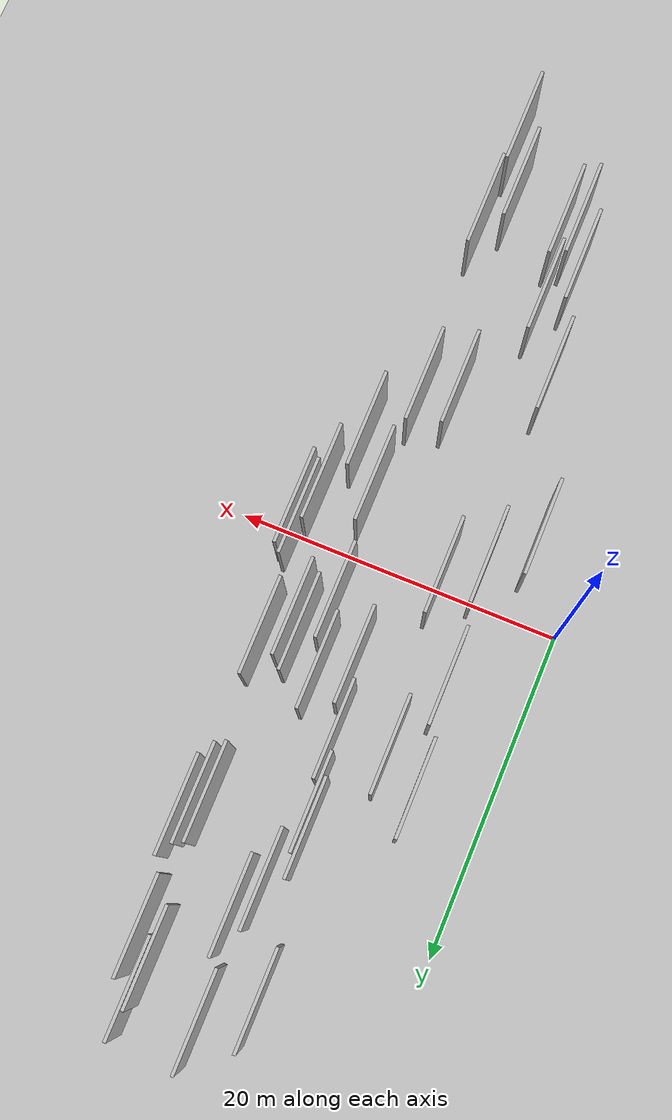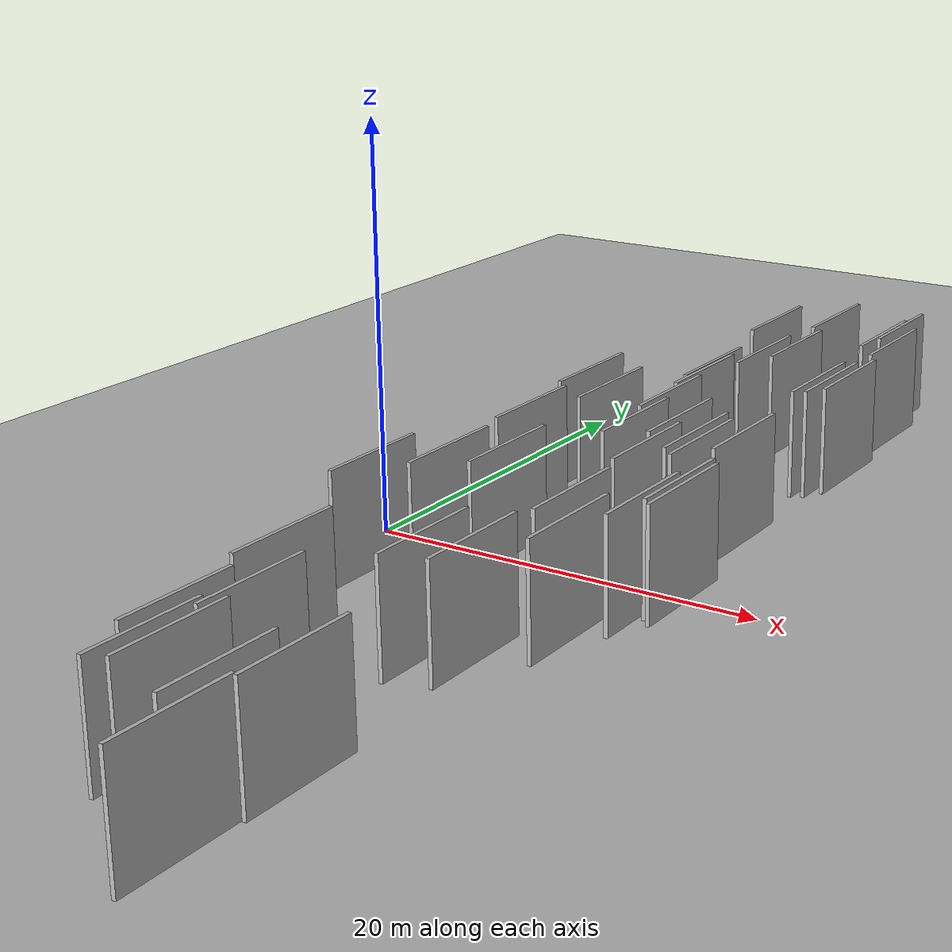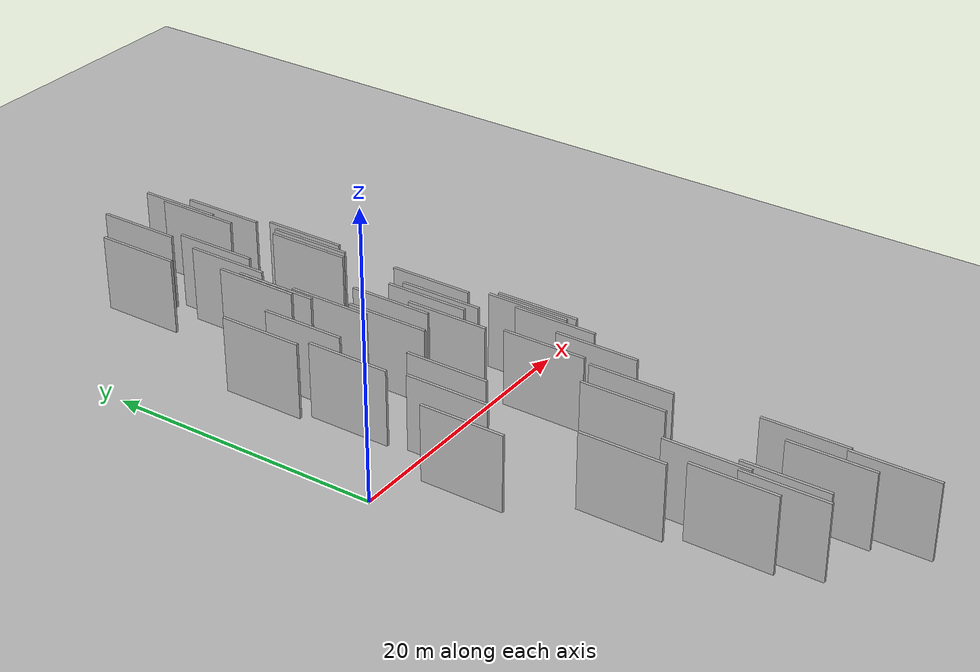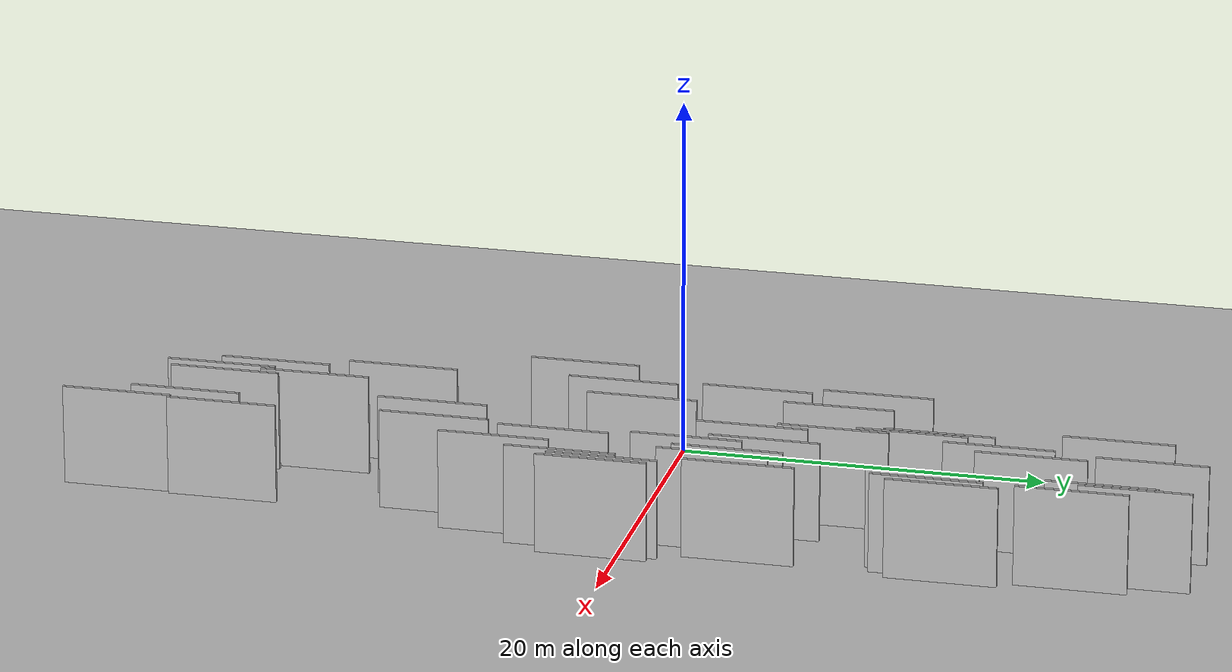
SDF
<?xml version="1.0" encoding="utf-8"?>

<sdf version="1.6">

   <world name="default">

      <gui fullscreen="0">

         <camera name="user_camera">

            <pose>-15 0 4.57585 0 0 0</pose>

            <view_controller>orbit</view_controller>

         </camera>

      </gui>

      <scene>

         <sky>

           <clouds>

             <speed>12</speed>

           </clouds>

         </sky>

         <ambient>0.4 0.4 0.4 1</ambient>

         <background>0.7 0.7 0.7 1</background>

         <shadows>1</shadows>

      </scene>

      <gravity>0 0 -9.8066</gravity>

      <magnetic_field>6e-06 2.3e-05 -4.2e-05</magnetic_field>

      <physics default="0" name="default_physics" type="ode">

         <ode>

            <solver>

               <type>quick</type>

               <iters>10</iters>

               <sor>1.0</sor>

               <use_dynamic_moi_rescaling>0</use_dynamic_moi_rescaling>

            </solver>

            <constraints>

               <cfm>0</cfm>

               <erp>0.2</erp>

               <contact_max_correcting_vel>100</contact_max_correcting_vel>

               <contact_surface_layer>0.001</contact_surface_layer>

            </constraints>

         </ode>

         <max_step_size>0.004</max_step_size>

         <real_time_factor>1</real_time_factor>

         <real_time_update_rate>250</real_time_update_rate>

      </physics>

      <light name="sun" type="directional">

         <cast_shadows>1</cast_shadows>

         <pose>0 0 10 0 0 0</pose>

         <diffuse>0.8 0.8 0.8 1</diffuse>

         <specular>0.2 0.2 0.2 1</specular>

         <attenuation>

            <range>1000</range>

            <constant>0.9</constant>

            <linear>0.01</linear>

            <quadratic>0.001</quadratic>

         </attenuation>

         <direction>-0.5 0.1 -0.9</direction>

      </light>

      <include>

         <name>ground_plane_1</name>

         <uri>model://HANNAS_ground_plane</uri>

         <pose>0 0 0  0 0 0</pose>

      </include>

      <include>

         <name>ground_plane_2</name>

         <uri>model://HANNAS_ground_plane</uri>

         <pose>100 0 0  0 0 0</pose>

      </include>

      <model name="HANNAS_wall_1">

         <static>1</static>

         <pose frame="">10.3094 19.3402 0.0 0.000000 0.000000 1.570796</pose>

         <link name="link">

            <pose frame="">0 0 3.00 0 0 0</pose>

            <collision name="collision">

               <geometry>

                  <box>

                     <size>6.00 0.2 6.00</size>

                  </box>

               </geometry>

               <max_contacts>10</max_contacts>

               <surface>

                  <contact>

                     <ode/>

                  </contact>

                  <bounce/>

                  <friction>

                     <torsional>

                        <ode/>

                     </torsional>

                     <ode/>

                  </friction>

               </surface>

            </collision>

            <visual name="visual">

               <cast_shadows>0</cast_shadows>

               <geometry>

                  <box>

                     <size>6.00 0.2 6.00</size>

                  </box>

               </geometry>

               <material>

                  <script>

                     <uri>model://HANNAS_wall/materials/scripts</uri>

                     <uri>model://HANNAS_wall/materials/textures</uri>

                     <name>vrc/HANNAS_wall</name>

                  </script>

               </material>

            </visual>

            <self_collide>0</self_collide>

            <enable_wind>0</enable_wind>

            <kinematic>0</kinematic>

         </link>

      </model>

      <model name="HANNAS_wall_2">

         <static>1</static>

         <pose frame="">15.5724 24.1488 0.0 0.000000 0.000000 1.570796</pose>

         <link name="link">

            <pose frame="">0 0 3.00 0 0 0</pose>

            <collision name="collision">

               <geometry>

                  <box>

                     <size>6.00 0.2 6.00</size>

                  </box>

               </geometry>

               <max_contacts>10</max_contacts>

               <surface>

                  <contact>

                     <ode/>

                  </contact>

                  <bounce/>

                  <friction>

                     <torsional>

                        <ode/>

                     </torsional>

                     <ode/>

                  </friction>

               </surface>

            </collision>

            <visual name="visual">

               <cast_shadows>0</cast_shadows>

               <geometry>

                  <box>

                     <size>6.00 0.2 6.00</size>

                  </box>

               </geometry>

               <material>

                  <script>

                     <uri>model://HANNAS_wall/materials/scripts</uri>

                     <uri>model://HANNAS_wall/materials/textures</uri>

                     <name>vrc/HANNAS_wall</name>

                  </script>

               </material>

            </visual>

            <self_collide>0</self_collide>

            <enable_wind>0</enable_wind>

            <kinematic>0</kinematic>

         </link>

      </model>

      <model name="HANNAS_wall_3">

         <static>1</static>

         <pose frame="">9.4070 14.5130 0.0 0.000000 0.000000 1.570796</pose>

         <link name="link">

            <pose frame="">0 0 3.00 0 0 0</pose>

            <collision name="collision">

               <geometry>

                  <box>

                     <size>6.00 0.2 6.00</size>

                  </box>

               </geometry>

               <max_contacts>10</max_contacts>

               <surface>

                  <contact>

                     <ode/>

                  </contact>

                  <bounce/>

                  <friction>

                     <torsional>

                        <ode/>

                     </torsional>

                     <ode/>

                  </friction>

               </surface>

            </collision>

            <visual name="visual">

               <cast_shadows>0</cast_shadows>

               <geometry>

                  <box>

                     <size>6.00 0.2 6.00</size>

                  </box>

               </geometry>

               <material>

                  <script>

                     <uri>model://HANNAS_wall/materials/scripts</uri>

                     <uri>model://HANNAS_wall/materials/textures</uri>

                     <name>vrc/HANNAS_wall</name>

                  </script>

               </material>

            </visual>

            <self_collide>0</self_collide>

            <enable_wind>0</enable_wind>

            <kinematic>0</kinematic>

         </link>

      </model>

      <model name="HANNAS_wall_4">

         <static>1</static>

         <pose frame="">16.1431 17.3992 0.0 0.000000 0.000000 1.570796</pose>

         <link name="link">

            <pose frame="">0 0 3.00 0 0 0</pose>

            <collision name="collision">

               <geometry>

                  <box>

                     <size>6.00 0.2 6.00</size>

                  </box>

               </geometry>

               <max_contacts>10</max_contacts>

               <surface>

                  <contact>

                     <ode/>

                  </contact>

                  <bounce/>

                  <friction>

                     <torsional>

                        <ode/>

                     </torsional>

                     <ode/>

                  </friction>

               </surface>

            </collision>

            <visual name="visual">

               <cast_shadows>0</cast_shadows>

               <geometry>

                  <box>

                     <size>6.00 0.2 6.00</size>

                  </box>

               </geometry>

               <material>

                  <script>

                     <uri>model://HANNAS_wall/materials/scripts</uri>

                     <uri>model://HANNAS_wall/materials/textures</uri>

                     <name>vrc/HANNAS_wall</name>

                  </script>

               </material>

            </visual>

            <self_collide>0</self_collide>

            <enable_wind>0</enable_wind>

            <kinematic>0</kinematic>

         </link>

      </model>

      <model name="HANNAS_wall_5">

         <static>1</static>

         <pose frame="">16.0255 -2.9704 0.0 0.000000 0.000000 1.570796</pose>

         <link name="link">

            <pose frame="">0 0 3.00 0 0 0</pose>

            <collision name="collision">

               <geometry>

                  <box>

                     <size>6.00 0.2 6.00</size>

                  </box>

               </geometry>

               <max_contacts>10</max_contacts>

               <surface>

                  <contact>

                     <ode/>

                  </contact>

                  <bounce/>

                  <friction>

                     <torsional>

                        <ode/>

                     </torsional>

                     <ode/>

                  </friction>

               </surface>

            </collision>

            <visual name="visual">

               <cast_shadows>0</cast_shadows>

               <geometry>

                  <box>

                     <size>6.00 0.2 6.00</size>

                  </box>

               </geometry>

               <material>

                  <script>

                     <uri>model://HANNAS_wall/materials/scripts</uri>

                     <uri>model://HANNAS_wall/materials/textures</uri>

                     <name>vrc/HANNAS_wall</name>

                  </script>

               </material>

            </visual>

            <self_collide>0</self_collide>

            <enable_wind>0</enable_wind>

            <kinematic>0</kinematic>

         </link>

      </model>

      <model name="HANNAS_wall_6">

         <static>1</static>

         <pose frame="">14.6744 27.3157 0.0 0.000000 0.000000 1.570796</pose>

         <link name="link">

            <pose frame="">0 0 3.00 0 0 0</pose>

            <collision name="collision">

               <geometry>

                  <box>

                     <size>6.00 0.2 6.00</size>

                  </box>

               </geometry>

               <max_contacts>10</max_contacts>

               <surface>

                  <contact>

                     <ode/>

                  </contact>

                  <bounce/>

                  <friction>

                     <torsional>

                        <ode/>

                     </torsional>

                     <ode/>

                  </friction>

               </surface>

            </collision>

            <visual name="visual">

               <cast_shadows>0</cast_shadows>

               <geometry>

                  <box>

                     <size>6.00 0.2 6.00</size>

                  </box>

               </geometry>

               <material>

                  <script>

                     <uri>model://HANNAS_wall/materials/scripts</uri>

                     <uri>model://HANNAS_wall/materials/textures</uri>

                     <name>vrc/HANNAS_wall</name>

                  </script>

               </material>

            </visual>

            <self_collide>0</self_collide>

            <enable_wind>0</enable_wind>

            <kinematic>0</kinematic>

         </link>

      </model>

      <model name="HANNAS_wall_7">

         <static>1</static>

         <pose frame="">8.1750 -18.4370 0.0 0.000000 0.000000 1.570796</pose>

         <link name="link">

            <pose frame="">0 0 3.00 0 0 0</pose>

            <collision name="collision">

               <geometry>

                  <box>

                     <size>6.00 0.2 6.00</size>

                  </box>

               </geometry>

               <max_contacts>10</max_contacts>

               <surface>

                  <contact>

                     <ode/>

                  </contact>

                  <bounce/>

                  <friction>

                     <torsional>

                        <ode/>

                     </torsional>

                     <ode/>

                  </friction>

               </surface>

            </collision>

            <visual name="visual">

               <cast_shadows>0</cast_shadows>

               <geometry>

                  <box>

                     <size>6.00 0.2 6.00</size>

                  </box>

               </geometry>

               <material>

                  <script>

                     <uri>model://HANNAS_wall/materials/scripts</uri>

                     <uri>model://HANNAS_wall/materials/textures</uri>

                     <name>vrc/HANNAS_wall</name>

                  </script>

               </material>

            </visual>

            <self_collide>0</self_collide>

            <enable_wind>0</enable_wind>

            <kinematic>0</kinematic>

         </link>

      </model>

      <model name="HANNAS_wall_8">

         <static>1</static>

         <pose frame="">14.5243 4.8752 0.0 0.000000 0.000000 1.570796</pose>

         <link name="link">

            <pose frame="">0 0 3.00 0 0 0</pose>

            <collision name="collision">

               <geometry>

                  <box>

                     <size>6.00 0.2 6.00</size>

                  </box>

               </geometry>

               <max_contacts>10</max_contacts>

               <surface>

                  <contact>

                     <ode/>

                  </contact>

                  <bounce/>

                  <friction>

                     <torsional>

                        <ode/>

                     </torsional>

                     <ode/>

                  </friction>

               </surface>

            </collision>

            <visual name="visual">

               <cast_shadows>0</cast_shadows>

               <geometry>

                  <box>

                     <size>6.00 0.2 6.00</size>

                  </box>

               </geometry>

               <material>

                  <script>

                     <uri>model://HANNAS_wall/materials/scripts</uri>

                     <uri>model://HANNAS_wall/materials/textures</uri>

                     <name>vrc/HANNAS_wall</name>

                  </script>

               </material>

            </visual>

            <self_collide>0</self_collide>

            <enable_wind>0</enable_wind>

            <kinematic>0</kinematic>

         </link>

      </model>

      <model name="HANNAS_wall_9">

         <static>1</static>

         <pose frame="">16.4626 -0.6088 0.0 0.000000 0.000000 1.570796</pose>

         <link name="link">

            <pose frame="">0 0 3.00 0 0 0</pose>

            <collision name="collision">

               <geometry>

                  <box>

                     <size>6.00 0.2 6.00</size>

                  </box>

               </geometry>

               <max_contacts>10</max_contacts>

               <surface>

                  <contact>

                     <ode/>

                  </contact>

                  <bounce/>

                  <friction>

                     <torsional>

                        <ode/>

                     </torsional>

                     <ode/>

                  </friction>

               </surface>

            </collision>

            <visual name="visual">

               <cast_shadows>0</cast_shadows>

               <geometry>

                  <box>

                     <size>6.00 0.2 6.00</size>

                  </box>

               </geometry>

               <material>

                  <script>

                     <uri>model://HANNAS_wall/materials/scripts</uri>

                     <uri>model://HANNAS_wall/materials/textures</uri>

                     <name>vrc/HANNAS_wall</name>

                  </script>

               </material>

            </visual>

            <self_collide>0</self_collide>

            <enable_wind>0</enable_wind>

            <kinematic>0</kinematic>

         </link>

      </model>

      <model name="HANNAS_wall_10">

         <static>1</static>

         <pose frame="">6.5493 9.9806 0.0 0.000000 0.000000 1.570796</pose>

         <link name="link">

            <pose frame="">0 0 3.00 0 0 0</pose>

            <collision name="collision">

               <geometry>

                  <box>

                     <size>6.00 0.2 6.00</size>

                  </box>

               </geometry>

               <max_contacts>10</max_contacts>

               <surface>

                  <contact>

                     <ode/>

                  </contact>

                  <bounce/>

                  <friction>

                     <torsional>

                        <ode/>

                     </torsional>

                     <ode/>

                  </friction>

               </surface>

            </collision>

            <visual name="visual">

               <cast_shadows>0</cast_shadows>

               <geometry>

                  <box>

                     <size>6.00 0.2 6.00</size>

                  </box>

               </geometry>

               <material>

                  <script>

                     <uri>model://HANNAS_wall/materials/scripts</uri>

                     <uri>model://HANNAS_wall/materials/textures</uri>

                     <name>vrc/HANNAS_wall</name>

                  </script>

               </material>

            </visual>

            <self_collide>0</self_collide>

            <enable_wind>0</enable_wind>

            <kinematic>0</kinematic>

         </link>

      </model>

      <model name="HANNAS_wall_11">

         <static>1</static>

         <pose frame="">15.8029 6.5562 0.0 0.000000 0.000000 1.570796</pose>

         <link name="link">

            <pose frame="">0 0 3.00 0 0 0</pose>

            <collision name="collision">

               <geometry>

                  <box>

                     <size>6.00 0.2 6.00</size>

                  </box>

               </geometry>

               <max_contacts>10</max_contacts>

               <surface>

                  <contact>

                     <ode/>

                  </contact>

                  <bounce/>

                  <friction>

                     <torsional>

                        <ode/>

                     </torsional>

                     <ode/>

                  </friction>

               </surface>

            </collision>

            <visual name="visual">

               <cast_shadows>0</cast_shadows>

               <geometry>

                  <box>

                     <size>6.00 0.2 6.00</size>

                  </box>

               </geometry>

               <material>

                  <script>

                     <uri>model://HANNAS_wall/materials/scripts</uri>

                     <uri>model://HANNAS_wall/materials/textures</uri>

                     <name>vrc/HANNAS_wall</name>

                  </script>

               </material>

            </visual>

            <self_collide>0</self_collide>

            <enable_wind>0</enable_wind>

            <kinematic>0</kinematic>

         </link>

      </model>

      <model name="HANNAS_wall_12">

         <static>1</static>

         <pose frame="">7.5150 -0.5313 0.0 0.000000 0.000000 1.570796</pose>

         <link name="link">

            <pose frame="">0 0 3.00 0 0 0</pose>

            <collision name="collision">

               <geometry>

                  <box>

                     <size>6.00 0.2 6.00</size>

                  </box>

               </geometry>

               <max_contacts>10</max_contacts>

               <surface>

                  <contact>

                     <ode/>

                  </contact>

                  <bounce/>

                  <friction>

                     <torsional>

                        <ode/>

                     </torsional>

                     <ode/>

                  </friction>

               </surface>

            </collision>

            <visual name="visual">

               <cast_shadows>0</cast_shadows>

               <geometry>

                  <box>

                     <size>6.00 0.2 6.00</size>

                  </box>

               </geometry>

               <material>

                  <script>

                     <uri>model://HANNAS_wall/materials/scripts</uri>

                     <uri>model://HANNAS_wall/materials/textures</uri>

                     <name>vrc/HANNAS_wall</name>

                  </script>

               </material>

            </visual>

            <self_collide>0</self_collide>

            <enable_wind>0</enable_wind>

            <kinematic>0</kinematic>

         </link>

      </model>

      <model name="HANNAS_wall_13">

         <static>1</static>

         <pose frame="">8.7044 -23.2994 0.0 0.000000 0.000000 1.570796</pose>

         <link name="link">

            <pose frame="">0 0 3.00 0 0 0</pose>

            <collision name="collision">

               <geometry>

                  <box>

                     <size>6.00 0.2 6.00</size>

                  </box>

               </geometry>

               <max_contacts>10</max_contacts>

               <surface>

                  <contact>

                     <ode/>

                  </contact>

                  <bounce/>

                  <friction>

                     <torsional>

                        <ode/>

                     </torsional>

                     <ode/>

                  </friction>

               </surface>

            </collision>

            <visual name="visual">

               <cast_shadows>0</cast_shadows>

               <geometry>

                  <box>

                     <size>6.00 0.2 6.00</size>

                  </box>

               </geometry>

               <material>

                  <script>

                     <uri>model://HANNAS_wall/materials/scripts</uri>

                     <uri>model://HANNAS_wall/materials/textures</uri>

                     <name>vrc/HANNAS_wall</name>

                  </script>

               </material>

            </visual>

            <self_collide>0</self_collide>

            <enable_wind>0</enable_wind>

            <kinematic>0</kinematic>

         </link>

      </model>

      <model name="HANNAS_wall_14">

         <static>1</static>

         <pose frame="">11.2874 21.2249 0.0 0.000000 0.000000 1.570796</pose>

         <link name="link">

            <pose frame="">0 0 3.00 0 0 0</pose>

            <collision name="collision">

               <geometry>

                  <box>

                     <size>6.00 0.2 6.00</size>

                  </box>

               </geometry>

               <max_contacts>10</max_contacts>

               <surface>

                  <contact>

                     <ode/>

                  </contact>

                  <bounce/>

                  <friction>

                     <torsional>

                        <ode/>

                     </torsional>

                     <ode/>

                  </friction>

               </surface>

            </collision>

            <visual name="visual">

               <cast_shadows>0</cast_shadows>

               <geometry>

                  <box>

                     <size>6.00 0.2 6.00</size>

                  </box>

               </geometry>

               <material>

                  <script>

                     <uri>model://HANNAS_wall/materials/scripts</uri>

                     <uri>model://HANNAS_wall/materials/textures</uri>

                     <name>vrc/HANNAS_wall</name>

                  </script>

               </material>

            </visual>

            <self_collide>0</self_collide>

            <enable_wind>0</enable_wind>

            <kinematic>0</kinematic>

         </link>

      </model>

      <model name="HANNAS_wall_15">

         <static>1</static>

         <pose frame="">10.7463 -11.2296 0.0 0.000000 0.000000 1.570796</pose>

         <link name="link">

            <pose frame="">0 0 3.00 0 0 0</pose>

            <collision name="collision">

               <geometry>

                  <box>

                     <size>6.00 0.2 6.00</size>

                  </box>

               </geometry>

               <max_contacts>10</max_contacts>

               <surface>

                  <contact>

                     <ode/>

                  </contact>

                  <bounce/>

                  <friction>

                     <torsional>

                        <ode/>

                     </torsional>

                     <ode/>

                  </friction>

               </surface>

            </collision>

            <visual name="visual">

               <cast_shadows>0</cast_shadows>

               <geometry>

                  <box>

                     <size>6.00 0.2 6.00</size>

                  </box>

               </geometry>

               <material>

                  <script>

                     <uri>model://HANNAS_wall/materials/scripts</uri>

                     <uri>model://HANNAS_wall/materials/textures</uri>

                     <name>vrc/HANNAS_wall</name>

                  </script>

               </material>

            </visual>

            <self_collide>0</self_collide>

            <enable_wind>0</enable_wind>

            <kinematic>0</kinematic>

         </link>

      </model>

      <model name="HANNAS_wall_16">

         <static>1</static>

         <pose frame="">15.5581 16.4812 0.0 0.000000 0.000000 1.570796</pose>

         <link name="link">

            <pose frame="">0 0 3.00 0 0 0</pose>

            <collision name="collision">

               <geometry>

                  <box>

                     <size>6.00 0.2 6.00</size>

                  </box>

               </geometry>

               <max_contacts>10</max_contacts>

               <surface>

                  <contact>

                     <ode/>

                  </contact>

                  <bounce/>

                  <friction>

                     <torsional>

                        <ode/>

                     </torsional>

                     <ode/>

                  </friction>

               </surface>

            </collision>

            <visual name="visual">

               <cast_shadows>0</cast_shadows>

               <geometry>

                  <box>

                     <size>6.00 0.2 6.00</size>

                  </box>

               </geometry>

               <material>

                  <script>

                     <uri>model://HANNAS_wall/materials/scripts</uri>

                     <uri>model://HANNAS_wall/materials/textures</uri>

                     <name>vrc/HANNAS_wall</name>

                  </script>

               </material>

            </visual>

            <self_collide>0</self_collide>

            <enable_wind>0</enable_wind>

            <kinematic>0</kinematic>

         </link>

      </model>

      <model name="HANNAS_wall_17">

         <static>1</static>

         <pose frame="">13.8614 5.5422 0.0 0.000000 0.000000 1.570796</pose>

         <link name="link">

            <pose frame="">0 0 3.00 0 0 0</pose>

            <collision name="collision">

               <geometry>

                  <box>

                     <size>6.00 0.2 6.00</size>

                  </box>

               </geometry>

               <max_contacts>10</max_contacts>

               <surface>

                  <contact>

                     <ode/>

                  </contact>

                  <bounce/>

                  <friction>

                     <torsional>

                        <ode/>

                     </torsional>

                     <ode/>

                  </friction>

               </surface>

            </collision>

            <visual name="visual">

               <cast_shadows>0</cast_shadows>

               <geometry>

                  <box>

                     <size>6.00 0.2 6.00</size>

                  </box>

               </geometry>

               <material>

                  <script>

                     <uri>model://HANNAS_wall/materials/scripts</uri>

                     <uri>model://HANNAS_wall/materials/textures</uri>

                     <name>vrc/HANNAS_wall</name>

                  </script>

               </material>

            </visual>

            <self_collide>0</self_collide>

            <enable_wind>0</enable_wind>

            <kinematic>0</kinematic>

         </link>

      </model>

      <model name="HANNAS_wall_18">

         <static>1</static>

         <pose frame="">10.6672 27.5425 0.0 0.000000 0.000000 1.570796</pose>

         <link name="link">

            <pose frame="">0 0 3.00 0 0 0</pose>

            <collision name="collision">

               <geometry>

                  <box>

                     <size>6.00 0.2 6.00</size>

                  </box>

               </geometry>

               <max_contacts>10</max_contacts>

               <surface>

                  <contact>

                     <ode/>

                  </contact>

                  <bounce/>

                  <friction>

                     <torsional>

                        <ode/>

                     </torsional>

                     <ode/>

                  </friction>

               </surface>

            </collision>

            <visual name="visual">

               <cast_shadows>0</cast_shadows>

               <geometry>

                  <box>

                     <size>6.00 0.2 6.00</size>

                  </box>

               </geometry>

               <material>

                  <script>

                     <uri>model://HANNAS_wall/materials/scripts</uri>

                     <uri>model://HANNAS_wall/materials/textures</uri>

                     <name>vrc/HANNAS_wall</name>

                  </script>

               </material>

            </visual>

            <self_collide>0</self_collide>

            <enable_wind>0</enable_wind>

            <kinematic>0</kinematic>

         </link>

      </model>

      <model name="HANNAS_wall_19">

         <static>1</static>

         <pose frame="">9.7678 10.3473 0.0 0.000000 0.000000 1.570796</pose>

         <link name="link">

            <pose frame="">0 0 3.00 0 0 0</pose>

            <collision name="collision">

               <geometry>

                  <box>

                     <size>6.00 0.2 6.00</size>

                  </box>

               </geometry>

               <max_contacts>10</max_contacts>

               <surface>

                  <contact>

                     <ode/>

                  </contact>

                  <bounce/>

                  <friction>

                     <torsional>

                        <ode/>

                     </torsional>

                     <ode/>

                  </friction>

               </surface>

            </collision>

            <visual name="visual">

               <cast_shadows>0</cast_shadows>

               <geometry>

                  <box>

                     <size>6.00 0.2 6.00</size>

                  </box>

               </geometry>

               <material>

                  <script>

                     <uri>model://HANNAS_wall/materials/scripts</uri>

                     <uri>model://HANNAS_wall/materials/textures</uri>

                     <name>vrc/HANNAS_wall</name>

                  </script>

               </material>

            </visual>

            <self_collide>0</self_collide>

            <enable_wind>0</enable_wind>

            <kinematic>0</kinematic>

         </link>

      </model>

      <model name="HANNAS_wall_20">

         <static>1</static>

         <pose frame="">5.9599 -14.0847 0.0 0.000000 0.000000 1.570796</pose>

         <link name="link">

            <pose frame="">0 0 3.00 0 0 0</pose>

            <collision name="collision">

               <geometry>

                  <box>

                     <size>6.00 0.2 6.00</size>

                  </box>

               </geometry>

               <max_contacts>10</max_contacts>

               <surface>

                  <contact>

                     <ode/>

                  </contact>

                  <bounce/>

                  <friction>

                     <torsional>

                        <ode/>

                     </torsional>

                     <ode/>

                  </friction>

               </surface>

            </collision>

            <visual name="visual">

               <cast_shadows>0</cast_shadows>

               <geometry>

                  <box>

                     <size>6.00 0.2 6.00</size>

                  </box>

               </geometry>

               <material>

                  <script>

                     <uri>model://HANNAS_wall/materials/scripts</uri>

                     <uri>model://HANNAS_wall/materials/textures</uri>

                     <name>vrc/HANNAS_wall</name>

                  </script>

               </material>

            </visual>

            <self_collide>0</self_collide>

            <enable_wind>0</enable_wind>

            <kinematic>0</kinematic>

         </link>

      </model>

      <model name="HANNAS_wall_21">

         <static>1</static>

         <pose frame="">4.3697 11.6855 0.0 0.000000 0.000000 1.570796</pose>

         <link name="link">

            <pose frame="">0 0 3.00 0 0 0</pose>

            <collision name="collision">

               <geometry>

                  <box>

                     <size>6.00 0.2 6.00</size>

                  </box>

               </geometry>

               <max_contacts>10</max_contacts>

               <surface>

                  <contact>

                     <ode/>

                  </contact>

                  <bounce/>

                  <friction>

                     <torsional>

                        <ode/>

                     </torsional>

                     <ode/>

                  </friction>

               </surface>

            </collision>

            <visual name="visual">

               <cast_shadows>0</cast_shadows>

               <geometry>

                  <box>

                     <size>6.00 0.2 6.00</size>

                  </box>

               </geometry>

               <material>

                  <script>

                     <uri>model://HANNAS_wall/materials/scripts</uri>

                     <uri>model://HANNAS_wall/materials/textures</uri>

                     <name>vrc/HANNAS_wall</name>

                  </script>

               </material>

            </visual>

            <self_collide>0</self_collide>

            <enable_wind>0</enable_wind>

            <kinematic>0</kinematic>

         </link>

      </model>

      <model name="HANNAS_wall_22">

         <static>1</static>

         <pose frame="">14.9804 16.1859 0.0 0.000000 0.000000 1.570796</pose>

         <link name="link">

            <pose frame="">0 0 3.00 0 0 0</pose>

            <collision name="collision">

               <geometry>

                  <box>

                     <size>6.00 0.2 6.00</size>

                  </box>

               </geometry>

               <max_contacts>10</max_contacts>

               <surface>

                  <contact>

                     <ode/>

                  </contact>

                  <bounce/>

                  <friction>

                     <torsional>

                        <ode/>

                     </torsional>

                     <ode/>

                  </friction>

               </surface>

            </collision>

            <visual name="visual">

               <cast_shadows>0</cast_shadows>

               <geometry>

                  <box>

                     <size>6.00 0.2 6.00</size>

                  </box>

               </geometry>

               <material>

                  <script>

                     <uri>model://HANNAS_wall/materials/scripts</uri>

                     <uri>model://HANNAS_wall/materials/textures</uri>

                     <name>vrc/HANNAS_wall</name>

                  </script>

               </material>

            </visual>

            <self_collide>0</self_collide>

            <enable_wind>0</enable_wind>

            <kinematic>0</kinematic>

         </link>

      </model>

      <model name="HANNAS_wall_23">

         <static>1</static>

         <pose frame="">13.3998 -22.1468 0.0 0.000000 0.000000 1.570796</pose>

         <link name="link">

            <pose frame="">0 0 3.00 0 0 0</pose>

            <collision name="collision">

               <geometry>

                  <box>

                     <size>6.00 0.2 6.00</size>

                  </box>

               </geometry>

               <max_contacts>10</max_contacts>

               <surface>

                  <contact>

                     <ode/>

                  </contact>

                  <bounce/>

                  <friction>

                     <torsional>

                        <ode/>

                     </torsional>

                     <ode/>

                  </friction>

               </surface>

            </collision>

            <visual name="visual">

               <cast_shadows>0</cast_shadows>

               <geometry>

                  <box>

                     <size>6.00 0.2 6.00</size>

                  </box>

               </geometry>

               <material>

                  <script>

                     <uri>model://HANNAS_wall/materials/scripts</uri>

                     <uri>model://HANNAS_wall/materials/textures</uri>

                     <name>vrc/HANNAS_wall</name>

                  </script>

               </material>

            </visual>

            <self_collide>0</self_collide>

            <enable_wind>0</enable_wind>

            <kinematic>0</kinematic>

         </link>

      </model>

      <model name="HANNAS_wall_24">

         <static>1</static>

         <pose frame="">14.8106 -6.8462 0.0 0.000000 0.000000 1.570796</pose>

         <link name="link">

            <pose frame="">0 0 3.00 0 0 0</pose>

            <collision name="collision">

               <geometry>

                  <box>

                     <size>6.00 0.2 6.00</size>

                  </box>

               </geometry>

               <max_contacts>10</max_contacts>

               <surface>

                  <contact>

                     <ode/>

                  </contact>

                  <bounce/>

                  <friction>

                     <torsional>

                        <ode/>

                     </torsional>

                     <ode/>

                  </friction>

               </surface>

            </collision>

            <visual name="visual">

               <cast_shadows>0</cast_shadows>

               <geometry>

                  <box>

                     <size>6.00 0.2 6.00</size>

                  </box>

               </geometry>

               <material>

                  <script>

                     <uri>model://HANNAS_wall/materials/scripts</uri>

                     <uri>model://HANNAS_wall/materials/textures</uri>

                     <name>vrc/HANNAS_wall</name>

                  </script>

               </material>

            </visual>

            <self_collide>0</self_collide>

            <enable_wind>0</enable_wind>

            <kinematic>0</kinematic>

         </link>

      </model>

      <model name="HANNAS_wall_25">

         <static>1</static>

         <pose frame="">6.8093 -20.9830 0.0 0.000000 0.000000 1.570796</pose>

         <link name="link">

            <pose frame="">0 0 3.00 0 0 0</pose>

            <collision name="collision">

               <geometry>

                  <box>

                     <size>6.00 0.2 6.00</size>

                  </box>

               </geometry>

               <max_contacts>10</max_contacts>

               <surface>

                  <contact>

                     <ode/>

                  </contact>

                  <bounce/>

                  <friction>

                     <torsional>

                        <ode/>

                     </torsional>

                     <ode/>

                  </friction>

               </surface>

            </collision>

            <visual name="visual">

               <cast_shadows>0</cast_shadows>

               <geometry>

                  <box>

                     <size>6.00 0.2 6.00</size>

                  </box>

               </geometry>

               <material>

                  <script>

                     <uri>model://HANNAS_wall/materials/scripts</uri>

                     <uri>model://HANNAS_wall/materials/textures</uri>

                     <name>vrc/HANNAS_wall</name>

                  </script>

               </material>

            </visual>

            <self_collide>0</self_collide>

            <enable_wind>0</enable_wind>

            <kinematic>0</kinematic>

         </link>

      </model>

      <model name="HANNAS_wall_26">

         <static>1</static>

         <pose frame="">12.6789 3.0873 0.0 0.000000 0.000000 1.570796</pose>

         <link name="link">

            <pose frame="">0 0 3.00 0 0 0</pose>

            <collision name="collision">

               <geometry>

                  <box>

                     <size>6.00 0.2 6.00</size>

                  </box>

               </geometry>

               <max_contacts>10</max_contacts>

               <surface>

                  <contact>

                     <ode/>

                  </contact>

                  <bounce/>

                  <friction>

                     <torsional>

                        <ode/>

                     </torsional>

                     <ode/>

                  </friction>

               </surface>

            </collision>

            <visual name="visual">

               <cast_shadows>0</cast_shadows>

               <geometry>

                  <box>

                     <size>6.00 0.2 6.00</size>

                  </box>

               </geometry>

               <material>

                  <script>

                     <uri>model://HANNAS_wall/materials/scripts</uri>

                     <uri>model://HANNAS_wall/materials/textures</uri>

                     <name>vrc/HANNAS_wall</name>

                  </script>

               </material>

            </visual>

            <self_collide>0</self_collide>

            <enable_wind>0</enable_wind>

            <kinematic>0</kinematic>

         </link>

      </model>

      <model name="HANNAS_wall_27">

         <static>1</static>

         <pose frame="">3.1186 -4.7022 0.0 0.000000 0.000000 1.570796</pose>

         <link name="link">

            <pose frame="">0 0 3.00 0 0 0</pose>

            <collision name="collision">

               <geometry>

                  <box>

                     <size>6.00 0.2 6.00</size>

                  </box>

               </geometry>

               <max_contacts>10</max_contacts>

               <surface>

                  <contact>

                     <ode/>

                  </contact>

                  <bounce/>

                  <friction>

                     <torsional>

                        <ode/>

                     </torsional>

                     <ode/>

                  </friction>

               </surface>

            </collision>

            <visual name="visual">

               <cast_shadows>0</cast_shadows>

               <geometry>

                  <box>

                     <size>6.00 0.2 6.00</size>

                  </box>

               </geometry>

               <material>

                  <script>

                     <uri>model://HANNAS_wall/materials/scripts</uri>

                     <uri>model://HANNAS_wall/materials/textures</uri>

                     <name>vrc/HANNAS_wall</name>

                  </script>

               </material>

            </visual>

            <self_collide>0</self_collide>

            <enable_wind>0</enable_wind>

            <kinematic>0</kinematic>

         </link>

      </model>

      <model name="HANNAS_wall_28">

         <static>1</static>

         <pose frame="">9.1477 15.9242 0.0 0.000000 0.000000 1.570796</pose>

         <link name="link">

            <pose frame="">0 0 3.00 0 0 0</pose>

            <collision name="collision">

               <geometry>

                  <box>

                     <size>6.00 0.2 6.00</size>

                  </box>

               </geometry>

               <max_contacts>10</max_contacts>

               <surface>

                  <contact>

                     <ode/>

                  </contact>

                  <bounce/>

                  <friction>

                     <torsional>

                        <ode/>

                     </torsional>

                     <ode/>

                  </friction>

               </surface>

            </collision>

            <visual name="visual">

               <cast_shadows>0</cast_shadows>

               <geometry>

                  <box>

                     <size>6.00 0.2 6.00</size>

                  </box>

               </geometry>

               <material>

                  <script>

                     <uri>model://HANNAS_wall/materials/scripts</uri>

                     <uri>model://HANNAS_wall/materials/textures</uri>

                     <name>vrc/HANNAS_wall</name>

                  </script>

               </material>

            </visual>

            <self_collide>0</self_collide>

            <enable_wind>0</enable_wind>

            <kinematic>0</kinematic>

         </link>

      </model>

      <model name="HANNAS_wall_29">

         <static>1</static>

         <pose frame="">4.9890 5.2255 0.0 0.000000 0.000000 1.570796</pose>

         <link name="link">

            <pose frame="">0 0 3.00 0 0 0</pose>

            <collision name="collision">

               <geometry>

                  <box>

                     <size>6.00 0.2 6.00</size>

                  </box>

               </geometry>

               <max_contacts>10</max_contacts>

               <surface>

                  <contact>

                     <ode/>

                  </contact>

                  <bounce/>

                  <friction>

                     <torsional>

                        <ode/>

                     </torsional>

                     <ode/>

                  </friction>

               </surface>

            </collision>

            <visual name="visual">

               <cast_shadows>0</cast_shadows>

               <geometry>

                  <box>

                     <size>6.00 0.2 6.00</size>

                  </box>

               </geometry>

               <material>

                  <script>

                     <uri>model://HANNAS_wall/materials/scripts</uri>

                     <uri>model://HANNAS_wall/materials/textures</uri>

                     <name>vrc/HANNAS_wall</name>

                  </script>

               </material>

            </visual>

            <self_collide>0</self_collide>

            <enable_wind>0</enable_wind>

            <kinematic>0</kinematic>

         </link>

      </model>

      <model name="HANNAS_wall_30">

         <static>1</static>

         <pose frame="">13.1667 -4.0107 0.0 0.000000 0.000000 1.570796</pose>

         <link name="link">

            <pose frame="">0 0 3.00 0 0 0</pose>

            <collision name="collision">

               <geometry>

                  <box>

                     <size>6.00 0.2 6.00</size>

                  </box>

               </geometry>

               <max_contacts>10</max_contacts>

               <surface>

                  <contact>

                     <ode/>

                  </contact>

                  <bounce/>

                  <friction>

                     <torsional>

                        <ode/>

                     </torsional>

                     <ode/>

                  </friction>

               </surface>

            </collision>

            <visual name="visual">

               <cast_shadows>0</cast_shadows>

               <geometry>

                  <box>

                     <size>6.00 0.2 6.00</size>

                  </box>

               </geometry>

               <material>

                  <script>

                     <uri>model://HANNAS_wall/materials/scripts</uri>

                     <uri>model://HANNAS_wall/materials/textures</uri>

                     <name>vrc/HANNAS_wall</name>

                  </script>

               </material>

            </visual>

            <self_collide>0</self_collide>

            <enable_wind>0</enable_wind>

            <kinematic>0</kinematic>

         </link>

      </model>

      <model name="HANNAS_wall_31">

         <static>1</static>

         <pose frame="">16.9046 -1.0776 0.0 0.000000 0.000000 1.570796</pose>

         <link name="link">

            <pose frame="">0 0 3.00 0 0 0</pose>

            <collision name="collision">

               <geometry>

                  <box>

                     <size>6.00 0.2 6.00</size>

                  </box>

               </geometry>

               <max_contacts>10</max_contacts>

               <surface>

                  <contact>

                     <ode/>

                  </contact>

                  <bounce/>

                  <friction>

                     <torsional>

                        <ode/>

                     </torsional>

                     <ode/>

                  </friction>

               </surface>

            </collision>

            <visual name="visual">

               <cast_shadows>0</cast_shadows>

               <geometry>

                  <box>

                     <size>6.00 0.2 6.00</size>

                  </box>

               </geometry>

               <material>

                  <script>

                     <uri>model://HANNAS_wall/materials/scripts</uri>

                     <uri>model://HANNAS_wall/materials/textures</uri>

                     <name>vrc/HANNAS_wall</name>

                  </script>

               </material>

            </visual>

            <self_collide>0</self_collide>

            <enable_wind>0</enable_wind>

            <kinematic>0</kinematic>

         </link>

      </model>

      <model name="HANNAS_wall_32">

         <static>1</static>

         <pose frame="">14.4498 25.5106 0.0 0.000000 0.000000 1.570796</pose>

         <link name="link">

            <pose frame="">0 0 3.00 0 0 0</pose>

            <collision name="collision">

               <geometry>

                  <box>

                     <size>6.00 0.2 6.00</size>

                  </box>

               </geometry>

               <max_contacts>10</max_contacts>

               <surface>

                  <contact>

                     <ode/>

                  </contact>

                  <bounce/>

                  <friction>

                     <torsional>

                        <ode/>

                     </torsional>

                     <ode/>

                  </friction>

               </surface>

            </collision>

            <visual name="visual">

               <cast_shadows>0</cast_shadows>

               <geometry>

                  <box>

                     <size>6.00 0.2 6.00</size>

                  </box>

               </geometry>

               <material>

                  <script>

                     <uri>model://HANNAS_wall/materials/scripts</uri>

                     <uri>model://HANNAS_wall/materials/textures</uri>

                     <name>vrc/HANNAS_wall</name>

                  </script>

               </material>

            </visual>

            <self_collide>0</self_collide>

            <enable_wind>0</enable_wind>

            <kinematic>0</kinematic>

         </link>

      </model>

      <model name="HANNAS_wall_33">

         <static>1</static>

         <pose frame="">12.1053 7.1483 0.0 0.000000 0.000000 1.570796</pose>

         <link name="link">

            <pose frame="">0 0 3.00 0 0 0</pose>

            <collision name="collision">

               <geometry>

                  <box>

                     <size>6.00 0.2 6.00</size>

                  </box>

               </geometry>

               <max_contacts>10</max_contacts>

               <surface>

                  <contact>

                     <ode/>

                  </contact>

                  <bounce/>

                  <friction>

                     <torsional>

                        <ode/>

                     </torsional>

                     <ode/>

                  </friction>

               </surface>

            </collision>

            <visual name="visual">

               <cast_shadows>0</cast_shadows>

               <geometry>

                  <box>

                     <size>6.00 0.2 6.00</size>

                  </box>

               </geometry>

               <material>

                  <script>

                     <uri>model://HANNAS_wall/materials/scripts</uri>

                     <uri>model://HANNAS_wall/materials/textures</uri>

                     <name>vrc/HANNAS_wall</name>

                  </script>

               </material>

            </visual>

            <self_collide>0</self_collide>

            <enable_wind>0</enable_wind>

            <kinematic>0</kinematic>

         </link>

      </model>

      <model name="HANNAS_wall_34">

         <static>1</static>

         <pose frame="">12.0519 -24.5205 0.0 0.000000 0.000000 1.570796</pose>

         <link name="link">

            <pose frame="">0 0 3.00 0 0 0</pose>

            <collision name="collision">

               <geometry>

                  <box>

                     <size>6.00 0.2 6.00</size>

                  </box>

               </geometry>

               <max_contacts>10</max_contacts>

               <surface>

                  <contact>

                     <ode/>

                  </contact>

                  <bounce/>

                  <friction>

                     <torsional>

                        <ode/>

                     </torsional>

                     <ode/>

                  </friction>

               </surface>

            </collision>

            <visual name="visual">

               <cast_shadows>0</cast_shadows>

               <geometry>

                  <box>

                     <size>6.00 0.2 6.00</size>

                  </box>

               </geometry>

               <material>

                  <script>

                     <uri>model://HANNAS_wall/materials/scripts</uri>

                     <uri>model://HANNAS_wall/materials/textures</uri>

                     <name>vrc/HANNAS_wall</name>

                  </script>

               </material>

            </visual>

            <self_collide>0</self_collide>

            <enable_wind>0</enable_wind>

            <kinematic>0</kinematic>

         </link>

      </model>

      <model name="HANNAS_wall_35">

         <static>1</static>

         <pose frame="">12.7280 -10.6173 0.0 0.000000 0.000000 1.570796</pose>

         <link name="link">

            <pose frame="">0 0 3.00 0 0 0</pose>

            <collision name="collision">

               <geometry>

                  <box>

                     <size>6.00 0.2 6.00</size>

                  </box>

               </geometry>

               <max_contacts>10</max_contacts>

               <surface>

                  <contact>

                     <ode/>

                  </contact>

                  <bounce/>

                  <friction>

                     <torsional>

                        <ode/>

                     </torsional>

                     <ode/>

                  </friction>

               </surface>

            </collision>

            <visual name="visual">

               <cast_shadows>0</cast_shadows>

               <geometry>

                  <box>

                     <size>6.00 0.2 6.00</size>

                  </box>

               </geometry>

               <material>

                  <script>

                     <uri>model://HANNAS_wall/materials/scripts</uri>

                     <uri>model://HANNAS_wall/materials/textures</uri>

                     <name>vrc/HANNAS_wall</name>

                  </script>

               </material>

            </visual>

            <self_collide>0</self_collide>

            <enable_wind>0</enable_wind>

            <kinematic>0</kinematic>

         </link>

      </model>

      <model name="HANNAS_wall_36">

         <static>1</static>

         <pose frame="">7.8096 -23.7312 0.0 0.000000 0.000000 1.570796</pose>

         <link name="link">

            <pose frame="">0 0 3.00 0 0 0</pose>

            <collision name="collision">

               <geometry>

                  <box>

                     <size>6.00 0.2 6.00</size>

                  </box>

               </geometry>

               <max_contacts>10</max_contacts>

               <surface>

                  <contact>

                     <ode/>

                  </contact>

                  <bounce/>

                  <friction>

                     <torsional>

                        <ode/>

                     </torsional>

                     <ode/>

                  </friction>

               </surface>

            </collision>

            <visual name="visual">

               <cast_shadows>0</cast_shadows>

               <geometry>

                  <box>

                     <size>6.00 0.2 6.00</size>

                  </box>

               </geometry>

               <material>

                  <script>

                     <uri>model://HANNAS_wall/materials/scripts</uri>

                     <uri>model://HANNAS_wall/materials/textures</uri>

                     <name>vrc/HANNAS_wall</name>

                  </script>

               </material>

            </visual>

            <self_collide>0</self_collide>

            <enable_wind>0</enable_wind>

            <kinematic>0</kinematic>

         </link>

      </model>

      <model name="HANNAS_wall_37">

         <static>1</static>

         <pose frame="">10.2777 6.0915 0.0 0.000000 0.000000 1.570796</pose>

         <link name="link">

            <pose frame="">0 0 3.00 0 0 0</pose>

            <collision name="collision">

               <geometry>

                  <box>

                     <size>6.00 0.2 6.00</size>

                  </box>

               </geometry>

               <max_contacts>10</max_contacts>

               <surface>

                  <contact>

                     <ode/>

                  </contact>

                  <bounce/>

                  <friction>

                     <torsional>

                        <ode/>

                     </torsional>

                     <ode/>

                  </friction>

               </surface>

            </collision>

            <visual name="visual">

               <cast_shadows>0</cast_shadows>

               <geometry>

                  <box>

                     <size>6.00 0.2 6.00</size>

                  </box>

               </geometry>

               <material>

                  <script>

                     <uri>model://HANNAS_wall/materials/scripts</uri>

                     <uri>model://HANNAS_wall/materials/textures</uri>

                     <name>vrc/HANNAS_wall</name>

                  </script>

               </material>

            </visual>

            <self_collide>0</self_collide>

            <enable_wind>0</enable_wind>

            <kinematic>0</kinematic>

         </link>

      </model>

      <model name="HANNAS_wall_38">

         <static>1</static>

         <pose frame="">13.1802 -27.9959 0.0 0.000000 0.000000 1.570796</pose>

         <link name="link">

            <pose frame="">0 0 3.00 0 0 0</pose>

            <collision name="collision">

               <geometry>

                  <box>

                     <size>6.00 0.2 6.00</size>

                  </box>

               </geometry>

               <max_contacts>10</max_contacts>

               <surface>

                  <contact>

                     <ode/>

                  </contact>

                  <bounce/>

                  <friction>

                     <torsional>

                        <ode/>

                     </torsional>

                     <ode/>

                  </friction>

               </surface>

            </collision>

            <visual name="visual">

               <cast_shadows>0</cast_shadows>

               <geometry>

                  <box>

                     <size>6.00 0.2 6.00</size>

                  </box>

               </geometry>

               <material>

                  <script>

                     <uri>model://HANNAS_wall/materials/scripts</uri>

                     <uri>model://HANNAS_wall/materials/textures</uri>

                     <name>vrc/HANNAS_wall</name>

                  </script>

               </material>

            </visual>

            <self_collide>0</self_collide>

            <enable_wind>0</enable_wind>

            <kinematic>0</kinematic>

         </link>

      </model>

      <model name="HANNAS_wall_39">

         <static>1</static>

         <pose frame="">5.3767 -2.0557 0.0 0.000000 0.000000 1.570796</pose>

         <link name="link">

            <pose frame="">0 0 3.00 0 0 0</pose>

            <collision name="collision">

               <geometry>

                  <box>

                     <size>6.00 0.2 6.00</size>

                  </box>

               </geometry>

               <max_contacts>10</max_contacts>

               <surface>

                  <contact>

                     <ode/>

                  </contact>

                  <bounce/>

                  <friction>

                     <torsional>

                        <ode/>

                     </torsional>

                     <ode/>

                  </friction>

               </surface>

            </collision>

            <visual name="visual">

               <cast_shadows>0</cast_shadows>

               <geometry>

                  <box>

                     <size>6.00 0.2 6.00</size>

                  </box>

               </geometry>

               <material>

                  <script>

                     <uri>model://HANNAS_wall/materials/scripts</uri>

                     <uri>model://HANNAS_wall/materials/textures</uri>

                     <name>vrc/HANNAS_wall</name>

                  </script>

               </material>

            </visual>

            <self_collide>0</self_collide>

            <enable_wind>0</enable_wind>

            <kinematic>0</kinematic>

         </link>

      </model>

      <model name="HANNAS_wall_40">

         <static>1</static>

         <pose frame="">8.0659 25.3157 0.0 0.000000 0.000000 1.570796</pose>

         <link name="link">

            <pose frame="">0 0 3.00 0 0 0</pose>

            <collision name="collision">

               <geometry>

                  <box>

                     <size>6.00 0.2 6.00</size>

                  </box>

               </geometry>

               <max_contacts>10</max_contacts>

               <surface>

                  <contact>

                     <ode/>

                  </contact>

                  <bounce/>

                  <friction>

                     <torsional>

                        <ode/>

                     </torsional>

                     <ode/>

                  </friction>

               </surface>

            </collision>

            <visual name="visual">

               <cast_shadows>0</cast_shadows>

               <geometry>

                  <box>

                     <size>6.00 0.2 6.00</size>

                  </box>

               </geometry>

               <material>

                  <script>

                     <uri>model://HANNAS_wall/materials/scripts</uri>

                     <uri>model://HANNAS_wall/materials/textures</uri>

                     <name>vrc/HANNAS_wall</name>

                  </script>

               </material>

            </visual>

            <self_collide>0</self_collide>

            <enable_wind>0</enable_wind>

            <kinematic>0</kinematic>

         </link>

      </model>

   </world>

</sdf>
